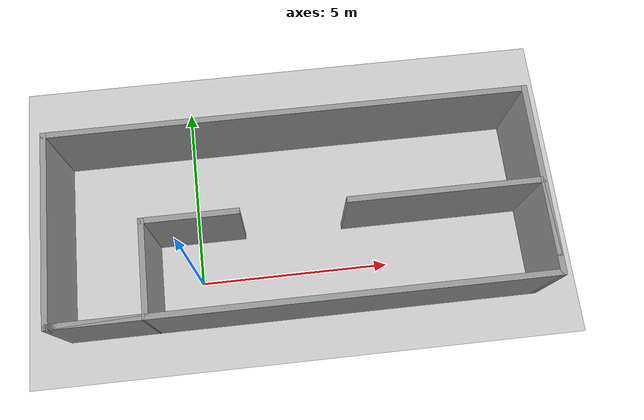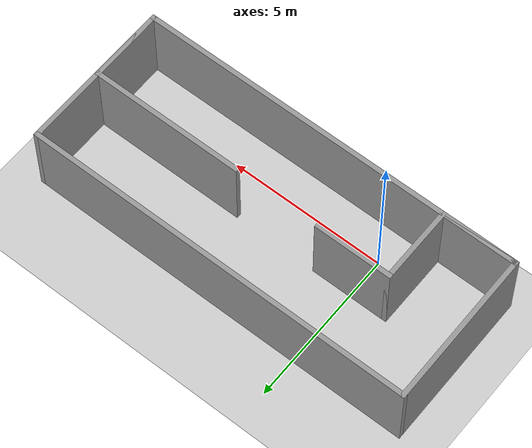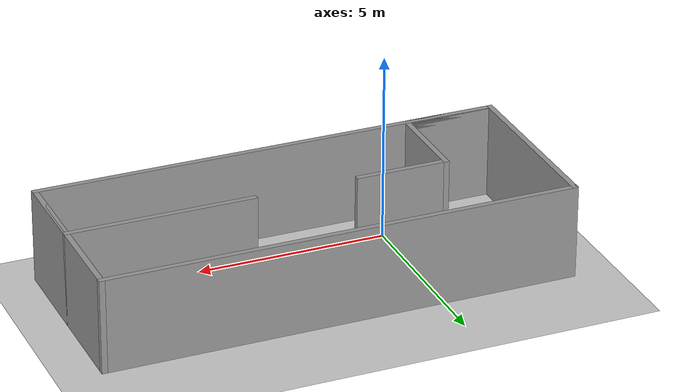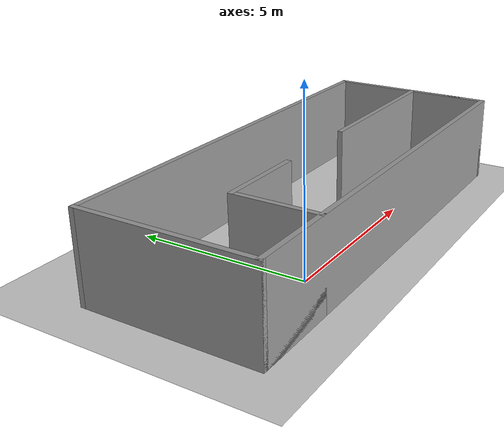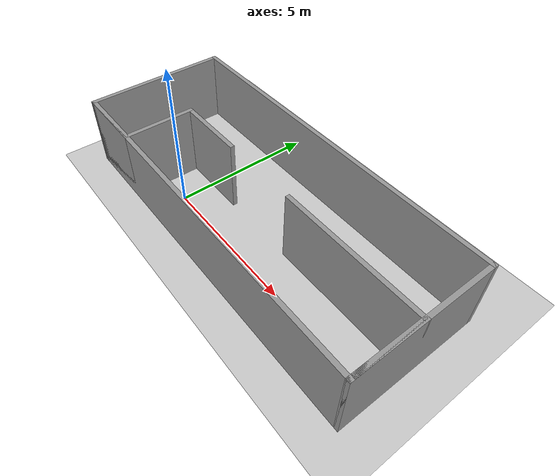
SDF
<sdf version="1.7">
 <world name="default">
  <light name="sun" type="directional">
   <pose>0 0 10 0 -0 0</pose>
   <diffuse>0.8 0.8 0.8 1</diffuse>
   <specular>0.2 0.2 0.2 1</specular>
   <attenuation>
    <range>1000</range>
    <constant>0.9</constant>
    <linear>0.01</linear>
    <quadratic>0.001</quadratic>
   </attenuation>
   <direction>-0.5 0.1 -0.9</direction>
   <spot><inner_angle>0</inner_angle><outer_angle>0</outer_angle><falloff>0</falloff></spot>
  </light>
  <model name="ground_plane">
   <static>1</static>
   <link name="link">
    <collision name="collision">
     <geometry><plane><normal>0 0 1</normal><size>100 100</size></plane></geometry>
     <surface>
      <contact><collide_bitmask>65535</collide_bitmask></contact>
      <friction><ode><mu>100</mu><mu2>50</mu2></ode></friction>
     </surface>
    </collision>
    <visual name="visual">
     <cast_shadows>0</cast_shadows>
     <geometry><plane><normal>0 0 1</normal><size>100 100</size></plane></geometry>
     <material>
      <script><uri>file://media/materials/scripts/gazebo.material</uri><name>Gazebo/Grey</name></script>
     </material>
    </visual>
   </link>
  </model>
  <gravity>0 0 -9.8</gravity>
  <magnetic_field>6e-06 2.3e-05 -4.2e-05</magnetic_field>
  <atmosphere type="adiabatic"/>
  <physics type="ode">
   <max_step_size>0.001</max_step_size>
   <real_time_factor>1</real_time_factor>
   <real_time_update_rate>1000</real_time_update_rate>
  </physics>
  <scene><ambient>0.4 0.4 0.4 1</ambient><background>0.7 0.7 0.7 1</background><shadows>1</shadows></scene>
  <audio><device>default</device></audio>
  <spherical_coordinates>
   <surface_model>EARTH_WGS84</surface_model>
   <latitude_deg>0</latitude_deg>
   <longitude_deg>0</longitude_deg>
   <elevation>0</elevation>
   <heading_deg>0</heading_deg>
  </spherical_coordinates>
  <model name="Untitled">
   <pose>2.66403 1.909 0 0 -0 0</pose>
   <link name="Wall_11">
    <collision name="Wall_11_Collision">
     <geometry><box><size>5 0.15 2.5</size></box></geometry>
     <pose>0 0 1.25 0 -0 0</pose>
    </collision>
    <visual name="Wall_11_Visual">
     <pose>0 0 1.25 0 -0 0</pose>
     <geometry><box><size>5 0.15 2.5</size></box></geometry>
     <material>
      <script><uri>file://media/materials/scripts/gazebo.material</uri><name>Gazebo/Grey</name></script>
      <ambient>1 1 1 1</ambient>
     </material>
     <meta><layer>0</layer></meta>
    </visual>
    <pose>6.175 -0.6175 0 0 -0 1.5708</pose>
   </link>
   <link name="Wall_12">
    <collision name="Wall_12_Collision">
     <geometry><box><size>12.5 0.15 2.5</size></box></geometry>
     <pose>0 0 1.25 0 -0 0</pose>
    </collision>
    <visual name="Wall_12_Visual">
     <pose>0 0 1.25 0 -0 0</pose>
     <geometry><box><size>12.5 0.15 2.5</size></box></geometry>
     <material>
      <script><uri>file://media/materials/scripts/gazebo.material</uri><name>Gazebo/Grey</name></script>
      <ambient>1 1 1 1</ambient>
     </material>
     <meta><layer>0</layer></meta>
    </visual>
    <pose>0 1.8075 0 0 -0 3.14159</pose>
   </link>
   <link name="Wall_13">
    <collision name="Wall_13_Collision">
     <geometry><box><size>5 0.15 2.5</size></box></geometry>
     <pose>0 0 1.25 0 -0 0</pose>
    </collision>
    <visual name="Wall_13_Visual">
     <pose>0 0 1.25 0 -0 0</pose>
     <geometry><box><size>5 0.15 2.5</size></box></geometry>
     <material>
      <script><uri>file://media/materials/scripts/gazebo.material</uri><name>Gazebo/Grey</name></script>
      <ambient>1 1 1 1</ambient>
     </material>
     <meta><layer>0</layer></meta>
    </visual>
    <pose>-6.175 -0.6175 0 0 -0 -1.5708</pose>
   </link>
   <link name="Wall_20">
    <collision name="Wall_20_Collision">
     <geometry><box><size>12.5 0.15 2.5</size></box></geometry>
     <pose>0 0 1.25 0 -0 0</pose>
    </collision>
    <visual name="Wall_20_Visual">
     <pose>0 0 1.25 0 -0 0</pose>
     <geometry><box><size>12.5 0.15 2.5</size></box></geometry>
     <material>
      <script><uri>file://media/materials/scripts/gazebo.material</uri><name>Gazebo/Grey</name></script>
      <ambient>1 1 1 1</ambient>
     </material>
     <meta><layer>0</layer></meta>
    </visual>
    <pose>0 -3.0425 0 0 -0 0</pose>
   </link>
   <link name="Wall_22">
    <collision name="Wall_22_Collision">
     <geometry><box><size>2.5 0.15 2.5</size></box></geometry>
     <pose>0 0 1.25 0 -0 0</pose>
    </collision>
    <visual name="Wall_22_Visual">
     <pose>0 0 1.25 0 -0 0</pose>
     <geometry><box><size>2.5 0.15 2.5</size></box></geometry>
     <material>
      <script><uri>file://media/materials/scripts/gazebo.material</uri><name>Gazebo/Grey</name></script>
      <ambient>1 1 1 1</ambient>
     </material>
     <meta><layer>0</layer></meta>
    </visual>
    <pose>-5 -3.0425 0 0 -0 0</pose>
   </link>
   <link name="Wall_23">
    <collision name="Wall_23_Collision">
     <geometry><box><size>2.5 0.15 2.5</size></box></geometry>
     <pose>0 0 1.25 0 -0 0</pose>
    </collision>
    <visual name="Wall_23_Visual">
     <pose>0 0 1.25 0 -0 0</pose>
     <geometry><box><size>2.5 0.15 2.5</size></box></geometry>
     <material>
      <script><uri>file://media/materials/scripts/gazebo.material</uri><name>Gazebo/Grey</name></script>
      <ambient>1 1 1 1</ambient>
     </material>
     <meta><layer>0</layer></meta>
    </visual>
    <pose>-3.825 -1.8675 0 0 -0 1.5708</pose>
   </link>
   <link name="Wall_24">
    <collision name="Wall_24_Collision">
     <geometry><box><size>2.5 0.15 2.5</size></box></geometry>
     <pose>0 0 1.25 0 -0 0</pose>
    </collision>
    <visual name="Wall_24_Visual">
     <pose>0 0 1.25 0 -0 0</pose>
     <geometry><box><size>2.5 0.15 2.5</size></box></geometry>
     <material>
      <script><uri>file://media/materials/scripts/gazebo.material</uri><name>Gazebo/Grey</name></script>
      <ambient>1 1 1 1</ambient>
     </material>
     <meta><layer>0</layer></meta>
    </visual>
    <pose>-2.65 -0.6925 0 0 -0 0</pose>
   </link>
   <link name="Wall_26">
    <collision name="Wall_26_Collision">
     <geometry><box><size>2.5 0.15 2.5</size></box></geometry>
     <pose>0 0 1.25 0 -0 0</pose>
    </collision>
    <visual name="Wall_26_Visual">
     <pose>0 0 1.25 0 -0 0</pose>
     <geometry><box><size>2.5 0.15 2.5</size></box></geometry>
     <material>
      <script><uri>file://media/materials/scripts/gazebo.material</uri><name>Gazebo/Grey</name></script>
      <ambient>1 1 1 1</ambient>
     </material>
     <meta><layer>0</layer></meta>
    </visual>
    <pose>6.175 -1.8675 0 0 -0 1.5708</pose>
   </link>
   <link name="Wall_27">
    <collision name="Wall_27_Collision">
     <geometry><box><size>5 0.15 2.5</size></box></geometry>
     <pose>0 0 1.25 0 -0 0</pose>
    </collision>
    <visual name="Wall_27_Visual">
     <pose>0 0 1.25 0 -0 0</pose>
     <geometry><box><size>5 0.15 2.5</size></box></geometry>
     <material>
      <script><uri>file://media/materials/scripts/gazebo.material</uri><name>Gazebo/Grey</name></script>
      <ambient>1 1 1 1</ambient>
     </material>
     <meta><layer>0</layer></meta>
    </visual>
    <pose>3.75 -0.6925 0 0 -0 3.14159</pose>
   </link>
   <static>1</static>
  </model>
 </world>
</sdf>
